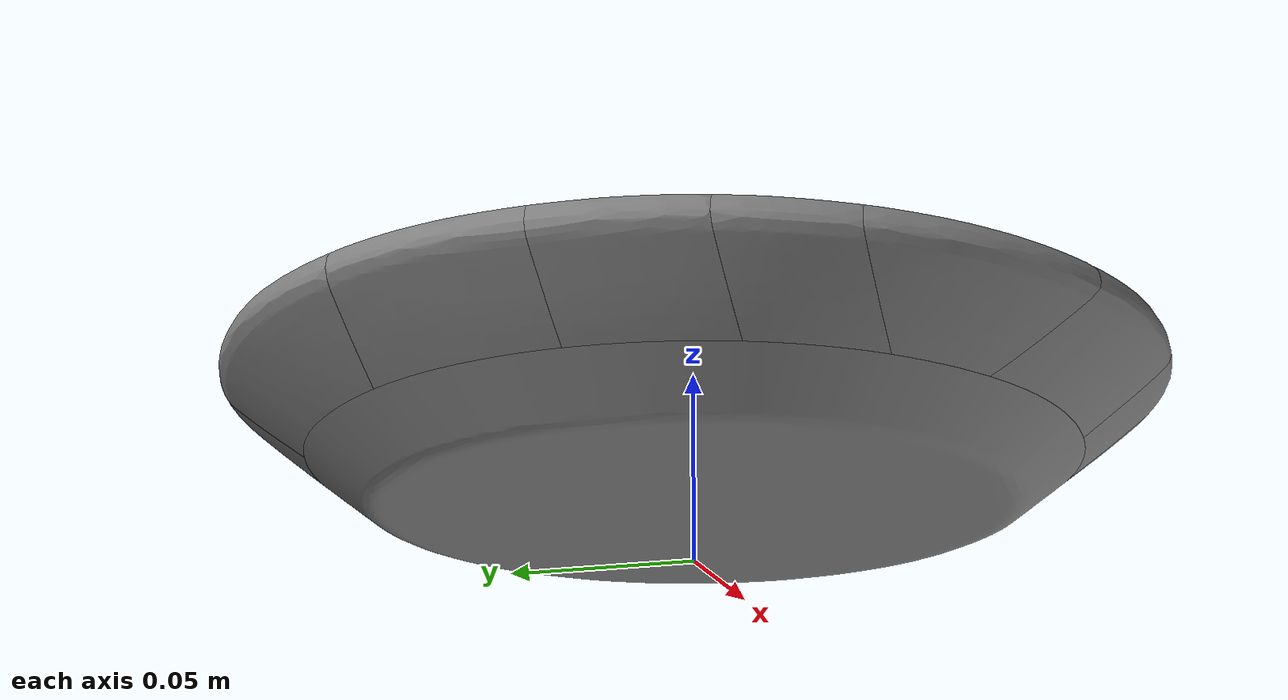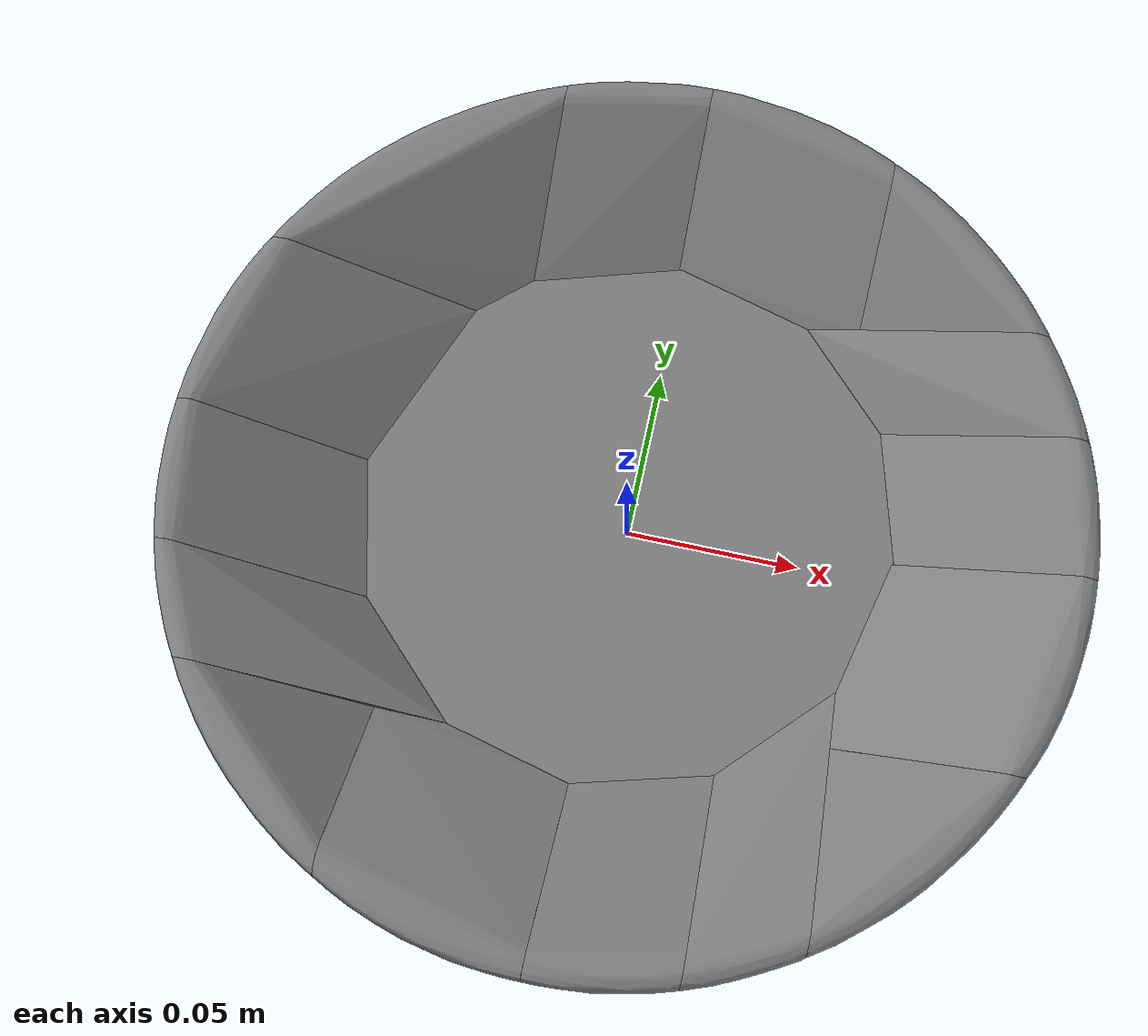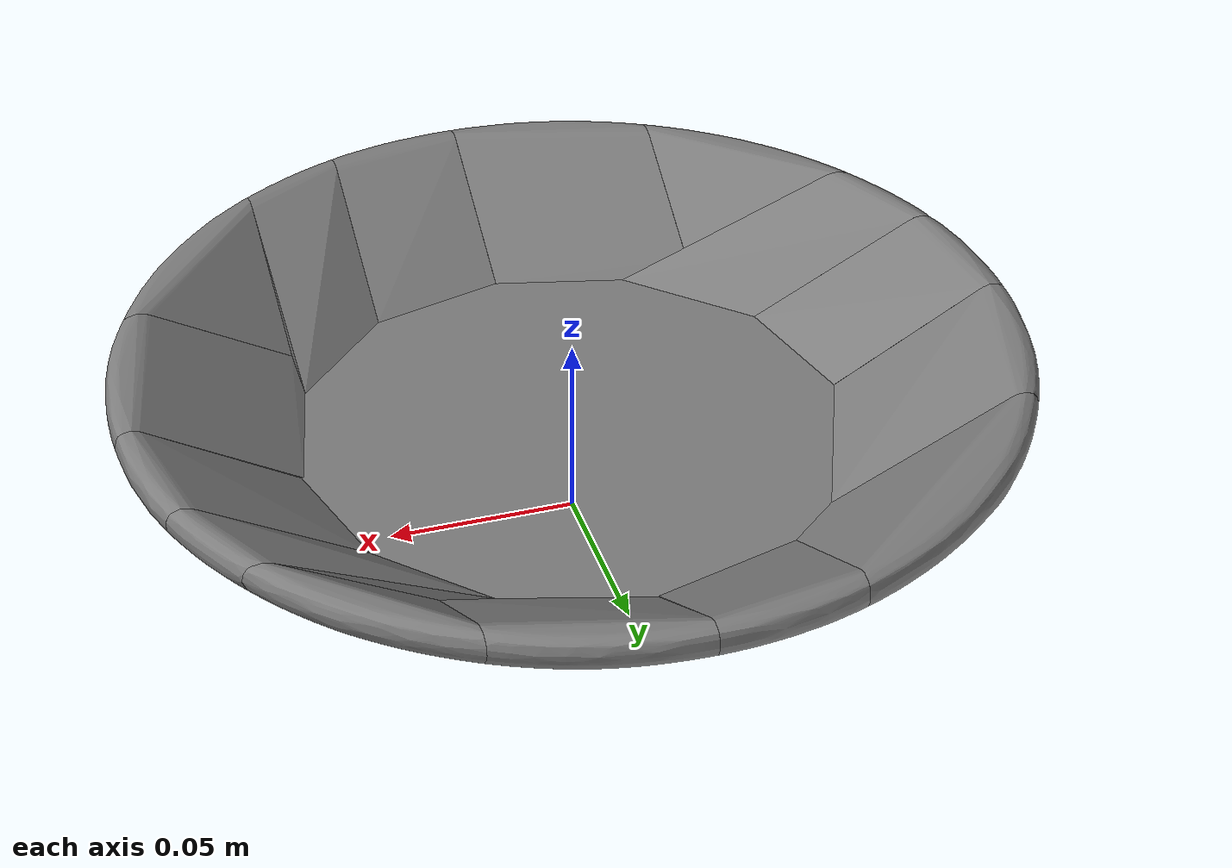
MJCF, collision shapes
<mujoco model="plate_00">
  <asset>
    <mesh name="plate00_visual_mesh" file="textured.obj" scale="0.12 0.12 0.12"/>
    <mesh name="plate00_collision_mesh_0" file="collision_0.obj" scale="0.12 0.12 0.12"/>
    <mesh name="plate00_collision_mesh_1" file="collision_1.obj" scale="0.12 0.12 0.12"/>
    <mesh name="plate00_collision_mesh_2" file="collision_2.obj" scale="0.12 0.12 0.12"/>
    <mesh name="plate00_collision_mesh_3" file="collision_3.obj" scale="0.12 0.12 0.12"/>
    <mesh name="plate00_collision_mesh_4" file="collision_4.obj" scale="0.12 0.12 0.12"/>
    <mesh name="plate00_collision_mesh_5" file="collision_5.obj" scale="0.12 0.12 0.12"/>
    <mesh name="plate00_collision_mesh_6" file="collision_6.obj" scale="0.12 0.12 0.12"/>
    <mesh name="plate00_collision_mesh_7" file="collision_7.obj" scale="0.12 0.12 0.12"/>
    <mesh name="plate00_collision_mesh_8" file="collision_8.obj" scale="0.12 0.12 0.12"/>
    <mesh name="plate00_collision_mesh_9" file="collision_9.obj" scale="0.12 0.12 0.12"/>
    <mesh name="plate00_collision_mesh_10" file="collision_10.obj" scale="0.12 0.12 0.12"/>
    <mesh name="plate00_collision_mesh_11" file="collision_11.obj" scale="0.12 0.12 0.12"/>
    <mesh name="plate00_collision_mesh_12" file="collision_12.obj" scale="0.12 0.12 0.12"/>
    <mesh name="plate00_collision_mesh_13" file="collision_13.obj" scale="0.12 0.12 0.12"/>
    <mesh name="plate00_collision_mesh_14" file="collision_14.obj" scale="0.12 0.12 0.12"/>
    <mesh name="plate00_collision_mesh_15" file="collision_15.obj" scale="0.12 0.12 0.12"/>
    <texture name="tex-plate00" type="2d" file="texture_map.png"/>
    <material name="plate00_material"
              texture="tex-plate00"
              rgba="1 1 1 1"
              texrepeat="1 1"
              texuniform="false"
              reflectance="0.5"/>
  </asset>

  <worldbody>
    <body>
      <body name="object">
        <geom name="g0"
              type="mesh"
              pos="0 0 0.03"
              quat="0.707107 0.707107 0 0"
              mesh="plate00_collision_mesh_0"
              density="300"
              friction="1 0.3 0.1"
              solimp="0.998 0.998 0.001"
              solref="0.001 1"
              contype="1"
              conaffinity="1"
              group="0"
              condim="4"/>
        <geom name="g1"
              type="mesh"
              pos="0 0 0.03"
              quat="0.707107 0.707107 0 0"
              mesh="plate00_collision_mesh_1"
              density="300"
              friction="1 0.3 0.1"
              solimp="0.998 0.998 0.001"
              solref="0.001 1"
              contype="1"
              conaffinity="1"
              group="0"
              condim="4"/>
        <geom name="g2"
              type="mesh"
              pos="0 0 0.03"
              quat="0.707107 0.707107 0 0"
              mesh="plate00_collision_mesh_2"
              density="300"
              friction="1 0.3 0.1"
              solimp="0.998 0.998 0.001"
              solref="0.001 1"
              contype="1"
              conaffinity="1"
              group="0"
              condim="4"/>
        <geom name="g3"
              type="mesh"
              pos="0 0 0.03"
              quat="0.707107 0.707107 0 0"
              mesh="plate00_collision_mesh_3"
              density="300"
              friction="1 0.3 0.1"
              solimp="0.998 0.998 0.001"
              solref="0.001 1"
              contype="1"
              conaffinity="1"
              group="0"
              condim="4"/>
        <geom name="g4"
              type="mesh"
              pos="0 0 0.03"
              quat="0.707107 0.707107 0 0"
              mesh="plate00_collision_mesh_4"
              density="300"
              friction="1 0.3 0.1"
              solimp="0.998 0.998 0.001"
              solref="0.001 1"
              contype="1"
              conaffinity="1"
              group="0"
              condim="4"/>
        <geom name="g5"
              type="mesh"
              pos="0 0 0.03"
              quat="0.707107 0.707107 0 0"
              mesh="plate00_collision_mesh_5"
              density="300"
              friction="1 0.3 0.1"
              solimp="0.998 0.998 0.001"
              solref="0.001 1"
              contype="1"
              conaffinity="1"
              group="0"
              condim="4"/>
        <geom name="g6"
              type="mesh"
              pos="0 0 0.03"
              quat="0.707107 0.707107 0 0"
              mesh="plate00_collision_mesh_6"
              density="300"
              friction="1 0.3 0.1"
              solimp="0.998 0.998 0.001"
              solref="0.001 1"
              contype="1"
              conaffinity="1"
              group="0"
              condim="4"/>
        <geom name="g7"
              type="mesh"
              pos="0 0 0.03"
              quat="0.707107 0.707107 0 0"
              mesh="plate00_collision_mesh_7"
              density="300"
              friction="1 0.3 0.1"
              solimp="0.998 0.998 0.001"
              solref="0.001 1"
              contype="1"
              conaffinity="1"
              group="0"
              condim="4"/>
        <geom name="g8"
              type="mesh"
              pos="0 0 0.03"
              quat="0.707107 0.707107 0 0"
              mesh="plate00_collision_mesh_8"
              density="300"
              friction="1 0.3 0.1"
              solimp="0.998 0.998 0.001"
              solref="0.001 1"
              contype="1"
              conaffinity="1"
              group="0"
              condim="4"/>
        <geom name="g9"
              type="mesh"
              pos="0 0 0.03"
              quat="0.707107 0.707107 0 0"
              mesh="plate00_collision_mesh_9"
              density="300"
              friction="1 0.3 0.1"
              solimp="0.998 0.998 0.001"
              solref="0.001 1"
              contype="1"
              conaffinity="1"
              group="0"
              condim="4"/>
        <geom name="g10"
              type="mesh"
              pos="0 0 0.03"
              quat="0.707107 0.707107 0 0"
              mesh="plate00_collision_mesh_10"
              density="300"
              friction="1 0.3 0.1"
              solimp="0.998 0.998 0.001"
              solref="0.001 1"
              contype="1"
              conaffinity="1"
              group="0"
              condim="4"/>
        <geom name="g11"
              type="mesh"
              pos="0 0 0.03"
              quat="0.707107 0.707107 0 0"
              mesh="plate00_collision_mesh_11"
              density="300"
              friction="1 0.3 0.1"
              solimp="0.998 0.998 0.001"
              solref="0.001 1"
              contype="1"
              conaffinity="1"
              group="0"
              condim="4"/>
        <geom name="g12"
              type="mesh"
              pos="0 0 0.03"
              quat="0.707107 0.707107 0 0"
              mesh="plate00_collision_mesh_12"
              density="300"
              friction="1 0.3 0.1"
              solimp="0.998 0.998 0.001"
              solref="0.001 1"
              contype="1"
              conaffinity="1"
              group="0"
              condim="4"/>
        <geom name="g13"
              type="mesh"
              pos="0 0 0.03"
              quat="0.707107 0.707107 0 0"
              mesh="plate00_collision_mesh_13"
              density="300"
              friction="1 0.3 0.1"
              solimp="0.998 0.998 0.001"
              solref="0.001 1"
              contype="1"
              conaffinity="1"
              group="0"
              condim="4"/>
        <geom name="g14"
              type="mesh"
              pos="0 0 0.03"
              quat="0.707107 0.707107 0 0"
              mesh="plate00_collision_mesh_14"
              density="300"
              friction="1 0.3 0.1"
              solimp="0.998 0.998 0.001"
              solref="0.001 1"
              contype="1"
              conaffinity="1"
              group="0"
              condim="4"/>
        <geom name="g15"
              type="mesh"
              pos="0 0 0.03"
              quat="0.707107 0.707107 0 0"
              mesh="plate00_collision_mesh_15"
              density="300"
              friction="1 0.3 0.1"
              solimp="0.998 0.998 0.001"
              solref="0.001 1"
              contype="1"
              conaffinity="1"
              group="0"
              condim="4"/>

        <geom name="g_visual"
              type="mesh"
              pos="0 0 0.03"
              quat="0.707107 0.707107 0 0"
              mesh="plate00_visual_mesh"
              material="plate00_material"
              contype="0"
              conaffinity="0"
              group="1"/>
      </body>

      <site name="bottom_site" rgba="0 0 0 0" size="0.005" pos="0 0 -0.01"/>
      <site name="top_site" rgba="0 0 0 0" size="0.005" pos="0 0 0.01"/>
      <site name="horizontal_radius_site" rgba="0 0 0 0" size="0.005" pos="0.11 0 0"/>
    </body>
  </worldbody>
</mujoco>
